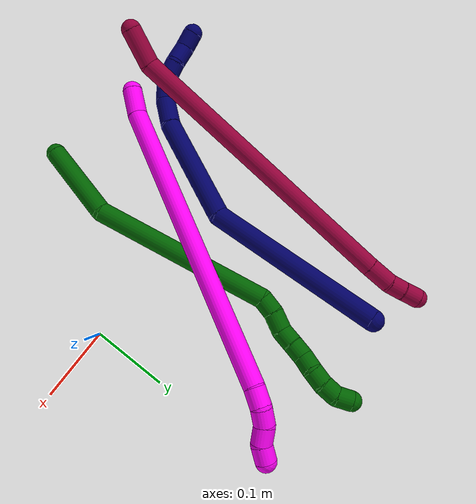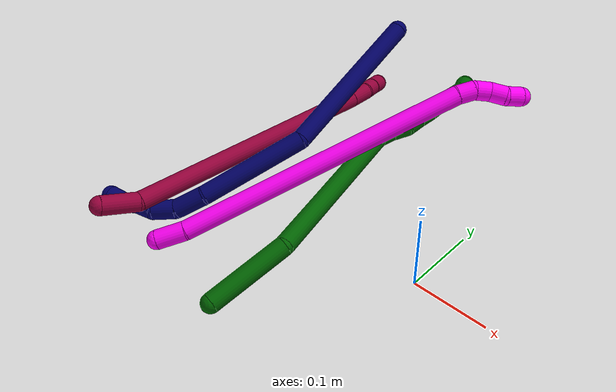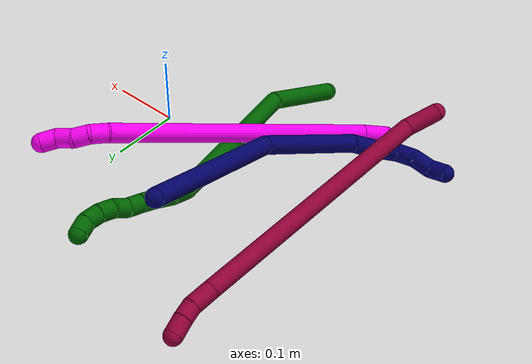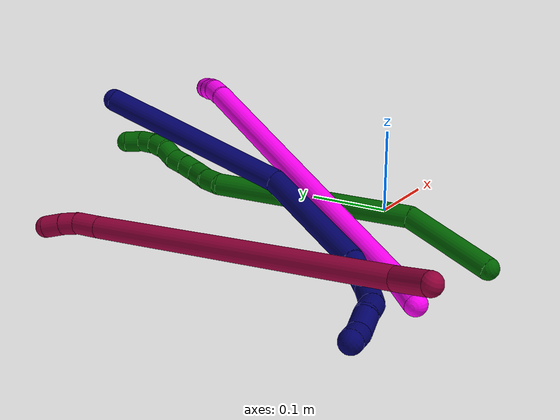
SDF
<sdf version="1.7">
 <world name="default">
  <model name="6">
   <static>0</static>
   <link name="6">
    <collision name="collision-cylinder-e_1_1_4">
     <pose>-0.028561 0.025702 0.037143 -0.605325 -0.563855 0.180394</pose>
     <geometry><cylinder><radius>0.0125</radius><length>0.106882</length></cylinder></geometry>
     <surface>
      <friction><ode><mu>1.16</mu><mu2>1.16</mu2><slip1>0</slip1><slip2>0</slip2></ode></friction>
      <contact><ode><kp>1e+06</kp><kd>1</kd><max_vel>0</max_vel><min_depth>0.001</min_depth></ode></contact>
     </surface>
    </collision>
    <visual name="visual-cylinder-e_1_1_4">
     <pose>-0.028561 0.025702 0.037143 -0.605325 -0.563855 0.180394</pose>
     <geometry><cylinder><radius>0.0125</radius><length>0.106882</length></cylinder></geometry>
     <material><ambient>0 0.392157 0.003922 1</ambient></material>
    </visual>
    <collision name="collision-cylinder-e_2_4_5">
     <pose>-0.069355 0.110288 0.170554 -0.548951 -0.107971 0.03043</pose>
     <geometry><cylinder><radius>0.0125</radius><length>0.227022</length></cylinder></geometry>
     <surface>
      <friction><ode><mu>1.16</mu><mu2>1.16</mu2><slip1>0</slip1><slip2>0</slip2></ode></friction>
      <contact><ode><kp>1e+06</kp><kd>1</kd><max_vel>0</max_vel><min_depth>0.001</min_depth></ode></contact>
     </surface>
    </collision>
    <visual name="visual-cylinder-e_2_4_5">
     <pose>-0.069355 0.110288 0.170554 -0.548951 -0.107971 0.03043</pose>
     <geometry><cylinder><radius>0.0125</radius><length>0.227022</length></cylinder></geometry>
     <material><ambient>0 0.392157 0.003922 1</ambient></material>
    </visual>
    <collision name="collision-cylinder-e_3_5_6">
     <pose>-0.086524 0.172397 0.275823 -0.344014 -0.476688 0.084367</pose>
     <geometry><cylinder><radius>0.0125</radius><length>0.021518</length></cylinder></geometry>
     <surface>
      <friction><ode><mu>1.16</mu><mu2>1.16</mu2><slip1>0</slip1><slip2>0</slip2></ode></friction>
      <contact><ode><kp>1e+06</kp><kd>1</kd><max_vel>0</max_vel><min_depth>0.001</min_depth></ode></contact>
     </surface>
    </collision>
    <visual name="visual-cylinder-e_3_5_6">
     <pose>-0.086524 0.172397 0.275823 -0.344014 -0.476688 0.084367</pose>
     <geometry><cylinder><radius>0.0125</radius><length>0.021518</length></cylinder></geometry>
     <material><ambient>0 0.392157 0.003922 1</ambient></material>
    </visual>
    <collision name="collision-cylinder-e_4_6_7">
     <pose>-0.099129 0.177618 0.294038 -0.213375 -0.682785 0.076065</pose>
     <geometry><cylinder><radius>0.0125</radius><length>0.024307</length></cylinder></geometry>
     <surface>
      <friction><ode><mu>1.16</mu><mu2>1.16</mu2><slip1>0</slip1><slip2>0</slip2></ode></friction>
      <contact><ode><kp>1e+06</kp><kd>1</kd><max_vel>0</max_vel><min_depth>0.001</min_depth></ode></contact>
     </surface>
    </collision>
    <visual name="visual-cylinder-e_4_6_7">
     <pose>-0.099129 0.177618 0.294038 -0.213375 -0.682785 0.076065</pose>
     <geometry><cylinder><radius>0.0125</radius><length>0.024307</length></cylinder></geometry>
     <material><ambient>0 0.392157 0.003922 1</ambient></material>
    </visual>
    <collision name="collision-cylinder-e_5_7_8">
     <pose>-0.111885 0.18414 0.310599 -0.552104 -0.532763 0.154291</pose>
     <geometry><cylinder><radius>0.0125</radius><length>0.020034</length></cylinder></geometry>
     <surface>
      <friction><ode><mu>1.16</mu><mu2>1.16</mu2><slip1>0</slip1><slip2>0</slip2></ode></friction>
      <contact><ode><kp>1e+06</kp><kd>1</kd><max_vel>0</max_vel><min_depth>0.001</min_depth></ode></contact>
     </surface>
    </collision>
    <visual name="visual-cylinder-e_5_7_8">
     <pose>-0.111885 0.18414 0.310599 -0.552104 -0.532763 0.154291</pose>
     <geometry><cylinder><radius>0.0125</radius><length>0.020034</length></cylinder></geometry>
     <material><ambient>0 0.392157 0.003922 1</ambient></material>
    </visual>
    <collision name="collision-cylinder-e_6_8_9">
     <pose>-0.121876 0.192647 0.325769 -0.47078 -0.509459 0.124738</pose>
     <geometry><cylinder><radius>0.0125</radius><length>0.020108</length></cylinder></geometry>
     <surface>
      <friction><ode><mu>1.16</mu><mu2>1.16</mu2><slip1>0</slip1><slip2>0</slip2></ode></friction>
      <contact><ode><kp>1e+06</kp><kd>1</kd><max_vel>0</max_vel><min_depth>0.001</min_depth></ode></contact>
     </surface>
    </collision>
    <visual name="visual-cylinder-e_6_8_9">
     <pose>-0.121876 0.192647 0.325769 -0.47078 -0.509459 0.124738</pose>
     <geometry><cylinder><radius>0.0125</radius><length>0.020108</length></cylinder></geometry>
     <material><ambient>0 0.392157 0.003922 1</ambient></material>
    </visual>
    <collision name="collision-cylinder-e_7_9_10">
     <pose>-0.133307 0.201644 0.339276 -0.722976 -0.710856 0.278876</pose>
     <geometry><cylinder><radius>0.0125</radius><length>0.020009</length></cylinder></geometry>
     <surface>
      <friction><ode><mu>1.16</mu><mu2>1.16</mu2><slip1>0</slip1><slip2>0</slip2></ode></friction>
      <contact><ode><kp>1e+06</kp><kd>1</kd><max_vel>0</max_vel><min_depth>0.001</min_depth></ode></contact>
     </surface>
    </collision>
    <visual name="visual-cylinder-e_7_9_10">
     <pose>-0.133307 0.201644 0.339276 -0.722976 -0.710856 0.278876</pose>
     <geometry><cylinder><radius>0.0125</radius><length>0.020009</length></cylinder></geometry>
     <material><ambient>0 0.392157 0.003922 1</ambient></material>
    </visual>
    <collision name="collision-cylinder-e_8_10_11">
     <pose>-0.144839 0.21004 0.352967 -0.399456 -0.522459 0.108128</pose>
     <geometry><cylinder><radius>0.0125</radius><length>0.020056</length></cylinder></geometry>
     <surface>
      <friction><ode><mu>1.16</mu><mu2>1.16</mu2><slip1>0</slip1><slip2>0</slip2></ode></friction>
      <contact><ode><kp>1e+06</kp><kd>1</kd><max_vel>0</max_vel><min_depth>0.001</min_depth></ode></contact>
     </surface>
    </collision>
    <visual name="visual-cylinder-e_8_10_11">
     <pose>-0.144839 0.21004 0.352967 -0.399456 -0.522459 0.108128</pose>
     <geometry><cylinder><radius>0.0125</radius><length>0.020056</length></cylinder></geometry>
     <material><ambient>0 0.392157 0.003922 1</ambient></material>
    </visual>
    <collision name="collision-cylinder-e_9_11_12">
     <pose>-0.152709 0.216975 0.369894 -0.379253 -0.28996 0.056031</pose>
     <geometry><cylinder><radius>0.0125</radius><length>0.020042</length></cylinder></geometry>
     <surface>
      <friction><ode><mu>1.16</mu><mu2>1.16</mu2><slip1>0</slip1><slip2>0</slip2></ode></friction>
      <contact><ode><kp>1e+06</kp><kd>1</kd><max_vel>0</max_vel><min_depth>0.001</min_depth></ode></contact>
     </surface>
    </collision>
    <visual name="visual-cylinder-e_9_11_12">
     <pose>-0.152709 0.216975 0.369894 -0.379253 -0.28996 0.056031</pose>
     <geometry><cylinder><radius>0.0125</radius><length>0.020042</length></cylinder></geometry>
     <material><ambient>0 0.392157 0.003922 1</ambient></material>
    </visual>
    <collision name="collision-cylinder-e_10_12_2">
     <pose>-0.15439 0.225387 0.387487 -0.510514 0.118557 -0.030971</pose>
     <geometry><cylinder><radius>0.0125</radius><length>0.020021</length></cylinder></geometry>
     <surface>
      <friction><ode><mu>1.16</mu><mu2>1.16</mu2><slip1>0</slip1><slip2>0</slip2></ode></friction>
      <contact><ode><kp>1e+06</kp><kd>1</kd><max_vel>0</max_vel><min_depth>0.001</min_depth></ode></contact>
     </surface>
    </collision>
    <visual name="visual-cylinder-e_10_12_2">
     <pose>-0.15439 0.225387 0.387487 -0.510514 0.118557 -0.030971</pose>
     <geometry><cylinder><radius>0.0125</radius><length>0.020021</length></cylinder></geometry>
     <material><ambient>0 0.392157 0.003922 1</ambient></material>
    </visual>
    <collision name="collision-sphere-2">
     <pose>-0.153206 0.230245 0.39616 0 -0 0</pose>
     <geometry><sphere><radius>0.0125</radius></sphere></geometry>
     <surface>
      <friction><ode><mu>1.16</mu><mu2>1.16</mu2><slip1>0</slip1><slip2>0</slip2></ode></friction>
      <contact><ode><kp>1e+06</kp><kd>1</kd><max_vel>0</max_vel><min_depth>0.001</min_depth></ode></contact>
     </surface>
    </collision>
    <visual name="visual-sphere-2">
     <pose>-0.153206 0.230245 0.39616 0 -0 0</pose>
     <geometry><sphere><radius>0.0125</radius></sphere></geometry>
     <material><ambient>0 0.392157 0.003922 1</ambient></material>
    </visual>
    <collision name="collision-sphere-12">
     <pose>-0.155574 0.22053 0.378814 0 -0 0</pose>
     <geometry><sphere><radius>0.0125</radius></sphere></geometry>
     <surface>
      <friction><ode><mu>1.16</mu><mu2>1.16</mu2><slip1>0</slip1><slip2>0</slip2></ode></friction>
      <contact><ode><kp>1e+06</kp><kd>1</kd><max_vel>0</max_vel><min_depth>0.001</min_depth></ode></contact>
     </surface>
    </collision>
    <visual name="visual-sphere-12">
     <pose>-0.155574 0.22053 0.378814 0 -0 0</pose>
     <geometry><sphere><radius>0.0125</radius></sphere></geometry>
     <material><ambient>0 0.392157 0.003922 1</ambient></material>
    </visual>
    <collision name="collision-sphere-11">
     <pose>-0.149843 0.21342 0.360973 0 -0 0</pose>
     <geometry><sphere><radius>0.0125</radius></sphere></geometry>
     <surface>
      <friction><ode><mu>1.16</mu><mu2>1.16</mu2><slip1>0</slip1><slip2>0</slip2></ode></friction>
      <contact><ode><kp>1e+06</kp><kd>1</kd><max_vel>0</max_vel><min_depth>0.001</min_depth></ode></contact>
     </surface>
    </collision>
    <visual name="visual-sphere-11">
     <pose>-0.149843 0.21342 0.360973 0 -0 0</pose>
     <geometry><sphere><radius>0.0125</radius></sphere></geometry>
     <material><ambient>0 0.392157 0.003922 1</ambient></material>
    </visual>
    <collision name="collision-sphere-10">
     <pose>-0.139835 0.20666 0.344961 0 -0 0</pose>
     <geometry><sphere><radius>0.0125</radius></sphere></geometry>
     <surface>
      <friction><ode><mu>1.16</mu><mu2>1.16</mu2><slip1>0</slip1><slip2>0</slip2></ode></friction>
      <contact><ode><kp>1e+06</kp><kd>1</kd><max_vel>0</max_vel><min_depth>0.001</min_depth></ode></contact>
     </surface>
    </collision>
    <visual name="visual-sphere-10">
     <pose>-0.139835 0.20666 0.344961 0 -0 0</pose>
     <geometry><sphere><radius>0.0125</radius></sphere></geometry>
     <material><ambient>0 0.392157 0.003922 1</ambient></material>
    </visual>
    <collision name="collision-sphere-9">
     <pose>-0.126779 0.196628 0.333591 0 -0 0</pose>
     <geometry><sphere><radius>0.0125</radius></sphere></geometry>
     <surface>
      <friction><ode><mu>1.16</mu><mu2>1.16</mu2><slip1>0</slip1><slip2>0</slip2></ode></friction>
      <contact><ode><kp>1e+06</kp><kd>1</kd><max_vel>0</max_vel><min_depth>0.001</min_depth></ode></contact>
     </surface>
    </collision>
    <visual name="visual-sphere-9">
     <pose>-0.126779 0.196628 0.333591 0 -0 0</pose>
     <geometry><sphere><radius>0.0125</radius></sphere></geometry>
     <material><ambient>0 0.392157 0.003922 1</ambient></material>
    </visual>
    <collision name="collision-sphere-4">
     <pose>-0.057123 0.051404 0.074285 0 -0 0</pose>
     <geometry><sphere><radius>0.0125</radius></sphere></geometry>
     <surface>
      <friction><ode><mu>1.16</mu><mu2>1.16</mu2><slip1>0</slip1><slip2>0</slip2></ode></friction>
      <contact><ode><kp>1e+06</kp><kd>1</kd><max_vel>0</max_vel><min_depth>0.001</min_depth></ode></contact>
     </surface>
    </collision>
    <visual name="visual-sphere-4">
     <pose>-0.057123 0.051404 0.074285 0 -0 0</pose>
     <geometry><sphere><radius>0.0125</radius></sphere></geometry>
     <material><ambient>0 0.392157 0.003922 1</ambient></material>
    </visual>
    <collision name="collision-sphere-1">
     <geometry><sphere><radius>0.0125</radius></sphere></geometry>
     <surface>
      <friction><ode><mu>1.16</mu><mu2>1.16</mu2><slip1>0</slip1><slip2>0</slip2></ode></friction>
      <contact><ode><kp>1e+06</kp><kd>1</kd><max_vel>0</max_vel><min_depth>0.001</min_depth></ode></contact>
     </surface>
    </collision>
    <visual name="visual-sphere-1">
     <geometry><sphere><radius>0.0125</radius></sphere></geometry>
     <material><ambient>0 0.392157 0.003922 1</ambient></material>
    </visual>
    <collision name="collision-sphere-8">
     <pose>-0.116972 0.188665 0.317946 0 -0 0</pose>
     <geometry><sphere><radius>0.0125</radius></sphere></geometry>
     <surface>
      <friction><ode><mu>1.16</mu><mu2>1.16</mu2><slip1>0</slip1><slip2>0</slip2></ode></friction>
      <contact><ode><kp>1e+06</kp><kd>1</kd><max_vel>0</max_vel><min_depth>0.001</min_depth></ode></contact>
     </surface>
    </collision>
    <visual name="visual-sphere-8">
     <pose>-0.116972 0.188665 0.317946 0 -0 0</pose>
     <geometry><sphere><radius>0.0125</radius></sphere></geometry>
     <material><ambient>0 0.392157 0.003922 1</ambient></material>
    </visual>
    <collision name="collision-sphere-5">
     <pose>-0.081587 0.169173 0.266824 0 -0 0</pose>
     <geometry><sphere><radius>0.0125</radius></sphere></geometry>
     <surface>
      <friction><ode><mu>1.16</mu><mu2>1.16</mu2><slip1>0</slip1><slip2>0</slip2></ode></friction>
      <contact><ode><kp>1e+06</kp><kd>1</kd><max_vel>0</max_vel><min_depth>0.001</min_depth></ode></contact>
     </surface>
    </collision>
    <visual name="visual-sphere-5">
     <pose>-0.081587 0.169173 0.266824 0 -0 0</pose>
     <geometry><sphere><radius>0.0125</radius></sphere></geometry>
     <material><ambient>0 0.392157 0.003922 1</ambient></material>
    </visual>
    <collision name="collision-sphere-6">
     <pose>-0.09146 0.175621 0.284823 0 -0 0</pose>
     <geometry><sphere><radius>0.0125</radius></sphere></geometry>
     <surface>
      <friction><ode><mu>1.16</mu><mu2>1.16</mu2><slip1>0</slip1><slip2>0</slip2></ode></friction>
      <contact><ode><kp>1e+06</kp><kd>1</kd><max_vel>0</max_vel><min_depth>0.001</min_depth></ode></contact>
     </surface>
    </collision>
    <visual name="visual-sphere-6">
     <pose>-0.09146 0.175621 0.284823 0 -0 0</pose>
     <geometry><sphere><radius>0.0125</radius></sphere></geometry>
     <material><ambient>0 0.392157 0.003922 1</ambient></material>
    </visual>
    <collision name="collision-sphere-7">
     <pose>-0.106797 0.179614 0.303253 0 -0 0</pose>
     <geometry><sphere><radius>0.0125</radius></sphere></geometry>
     <surface>
      <friction><ode><mu>1.16</mu><mu2>1.16</mu2><slip1>0</slip1><slip2>0</slip2></ode></friction>
      <contact><ode><kp>1e+06</kp><kd>1</kd><max_vel>0</max_vel><min_depth>0.001</min_depth></ode></contact>
     </surface>
    </collision>
    <visual name="visual-sphere-7">
     <pose>-0.106797 0.179614 0.303253 0 -0 0</pose>
     <geometry><sphere><radius>0.0125</radius></sphere></geometry>
     <material><ambient>0 0.392157 0.003922 1</ambient></material>
    </visual>
    <inertial>
     <pose>-0.078971 0.120967 0.195169 0 -0 0</pose>
     <mass>0.5</mass>
     <inertia>
      <ixx>0.001112</ixx>
      <ixy>0</ixy>
      <ixz>0</ixz>
      <iyy>0.001009</iyy>
      <iyz>0</iyz>
      <izz>-0.000367</izz>
     </inertia>
    </inertial>
   </link>
   <pose>-0.145371 -0.190222 0.012569 2.12412 0.515103 -2.86032</pose>
  </model>
  <model name="7">
   <static>0</static>
   <link name="7">
    <collision name="collision-cylinder-e_1_1_4">
     <pose>-0.013758 -0.090133 -0.05863 2.14751 -0.127259 -0.233839</pose>
     <geometry><cylinder><radius>0.0125</radius><length>0.216801</length></cylinder></geometry>
     <surface>
      <friction><ode><mu>1.16</mu><mu2>1.16</mu2><slip1>0</slip1><slip2>0</slip2></ode></friction>
      <contact><ode><kp>1e+06</kp><kd>1</kd><max_vel>0</max_vel><min_depth>0.001</min_depth></ode></contact>
     </surface>
    </collision>
    <visual name="visual-cylinder-e_1_1_4">
     <pose>-0.013758 -0.090133 -0.05863 2.14751 -0.127259 -0.233839</pose>
     <geometry><cylinder><radius>0.0125</radius><length>0.216801</length></cylinder></geometry>
     <material><ambient>0.003922 0 0.403922 1</ambient></material>
    </visual>
    <collision name="collision-cylinder-e_2_4_5">
     <pose>-0.062572 -0.237718 -0.138106 1.91889 -0.520775 -0.726496</pose>
     <geometry><cylinder><radius>0.0125</radius><length>0.140914</length></cylinder></geometry>
     <surface>
      <friction><ode><mu>1.16</mu><mu2>1.16</mu2><slip1>0</slip1><slip2>0</slip2></ode></friction>
      <contact><ode><kp>1e+06</kp><kd>1</kd><max_vel>0</max_vel><min_depth>0.001</min_depth></ode></contact>
     </surface>
    </collision>
    <visual name="visual-cylinder-e_2_4_5">
     <pose>-0.062572 -0.237718 -0.138106 1.91889 -0.520775 -0.726496</pose>
     <geometry><cylinder><radius>0.0125</radius><length>0.140914</length></cylinder></geometry>
     <material><ambient>0.003922 0 0.403922 1</ambient></material>
    </visual>
    <collision name="collision-cylinder-e_3_5_6">
     <pose>-0.111509 -0.308662 -0.163509 1.89642 -0.772572 -1.031</pose>
     <geometry><cylinder><radius>0.0125</radius><length>0.039774</length></cylinder></geometry>
     <surface>
      <friction><ode><mu>1.16</mu><mu2>1.16</mu2><slip1>0</slip1><slip2>0</slip2></ode></friction>
      <contact><ode><kp>1e+06</kp><kd>1</kd><max_vel>0</max_vel><min_depth>0.001</min_depth></ode></contact>
     </surface>
    </collision>
    <visual name="visual-cylinder-e_3_5_6">
     <pose>-0.111509 -0.308662 -0.163509 1.89642 -0.772572 -1.031</pose>
     <geometry><cylinder><radius>0.0125</radius><length>0.039774</length></cylinder></geometry>
     <material><ambient>0.003922 0 0.403922 1</ambient></material>
    </visual>
    <collision name="collision-cylinder-e_4_6_7">
     <pose>-0.136225 -0.332319 -0.165583 1.33125 -0.80293 -0.643467</pose>
     <geometry><cylinder><radius>0.0125</radius><length>0.030124</length></cylinder></geometry>
     <surface>
      <friction><ode><mu>1.16</mu><mu2>1.16</mu2><slip1>0</slip1><slip2>0</slip2></ode></friction>
      <contact><ode><kp>1e+06</kp><kd>1</kd><max_vel>0</max_vel><min_depth>0.001</min_depth></ode></contact>
     </surface>
    </collision>
    <visual name="visual-cylinder-e_4_6_7">
     <pose>-0.136225 -0.332319 -0.165583 1.33125 -0.80293 -0.643467</pose>
     <geometry><cylinder><radius>0.0125</radius><length>0.030124</length></cylinder></geometry>
     <material><ambient>0.003922 0 0.403922 1</ambient></material>
    </visual>
    <collision name="collision-cylinder-e_5_7_8">
     <pose>-0.156525 -0.347127 -0.157191 0.666126 -0.899643 -0.331018</pose>
     <geometry><cylinder><radius>0.0125</radius><length>0.024173</length></cylinder></geometry>
     <surface>
      <friction><ode><mu>1.16</mu><mu2>1.16</mu2><slip1>0</slip1><slip2>0</slip2></ode></friction>
      <contact><ode><kp>1e+06</kp><kd>1</kd><max_vel>0</max_vel><min_depth>0.001</min_depth></ode></contact>
     </surface>
    </collision>
    <visual name="visual-cylinder-e_5_7_8">
     <pose>-0.156525 -0.347127 -0.157191 0.666126 -0.899643 -0.331018</pose>
     <geometry><cylinder><radius>0.0125</radius><length>0.024173</length></cylinder></geometry>
     <material><ambient>0.003922 0 0.403922 1</ambient></material>
    </visual>
    <collision name="collision-cylinder-e_6_8_9">
     <pose>-0.178174 -0.355135 -0.148542 0.887265 -1.22876 -0.64695</pose>
     <geometry><cylinder><radius>0.0125</radius><length>0.025867</length></cylinder></geometry>
     <surface>
      <friction><ode><mu>1.16</mu><mu2>1.16</mu2><slip1>0</slip1><slip2>0</slip2></ode></friction>
      <contact><ode><kp>1e+06</kp><kd>1</kd><max_vel>0</max_vel><min_depth>0.001</min_depth></ode></contact>
     </surface>
    </collision>
    <visual name="visual-cylinder-e_6_8_9">
     <pose>-0.178174 -0.355135 -0.148542 0.887265 -1.22876 -0.64695</pose>
     <geometry><cylinder><radius>0.0125</radius><length>0.025867</length></cylinder></geometry>
     <material><ambient>0.003922 0 0.403922 1</ambient></material>
    </visual>
    <collision name="collision-cylinder-e_7_9_2">
     <pose>-0.198729 -0.362434 -0.139534 0.560627 -0.846775 -0.258033</pose>
     <geometry><cylinder><radius>0.0125</radius><length>0.022347</length></cylinder></geometry>
     <surface>
      <friction><ode><mu>1.16</mu><mu2>1.16</mu2><slip1>0</slip1><slip2>0</slip2></ode></friction>
      <contact><ode><kp>1e+06</kp><kd>1</kd><max_vel>0</max_vel><min_depth>0.001</min_depth></ode></contact>
     </surface>
    </collision>
    <visual name="visual-cylinder-e_7_9_2">
     <pose>-0.198729 -0.362434 -0.139534 0.560627 -0.846775 -0.258033</pose>
     <geometry><cylinder><radius>0.0125</radius><length>0.022347</length></cylinder></geometry>
     <material><ambient>0.003922 0 0.403922 1</ambient></material>
    </visual>
    <collision name="collision-sphere-2">
     <pose>-0.2071 -0.366369 -0.133266 0 -0 0</pose>
     <geometry><sphere><radius>0.0125</radius></sphere></geometry>
     <surface>
      <friction><ode><mu>1.16</mu><mu2>1.16</mu2><slip1>0</slip1><slip2>0</slip2></ode></friction>
      <contact><ode><kp>1e+06</kp><kd>1</kd><max_vel>0</max_vel><min_depth>0.001</min_depth></ode></contact>
     </surface>
    </collision>
    <visual name="visual-sphere-2">
     <pose>-0.2071 -0.366369 -0.133266 0 -0 0</pose>
     <geometry><sphere><radius>0.0125</radius></sphere></geometry>
     <material><ambient>0.003922 0 0.403922 1</ambient></material>
    </visual>
    <collision name="collision-sphere-9">
     <pose>-0.190359 -0.358498 -0.145802 0 -0 0</pose>
     <geometry><sphere><radius>0.0125</radius></sphere></geometry>
     <surface>
      <friction><ode><mu>1.16</mu><mu2>1.16</mu2><slip1>0</slip1><slip2>0</slip2></ode></friction>
      <contact><ode><kp>1e+06</kp><kd>1</kd><max_vel>0</max_vel><min_depth>0.001</min_depth></ode></contact>
     </surface>
    </collision>
    <visual name="visual-sphere-9">
     <pose>-0.190359 -0.358498 -0.145802 0 -0 0</pose>
     <geometry><sphere><radius>0.0125</radius></sphere></geometry>
     <material><ambient>0.003922 0 0.403922 1</ambient></material>
    </visual>
    <collision name="collision-sphere-4">
     <pose>-0.027516 -0.180266 -0.117259 0 -0 0</pose>
     <geometry><sphere><radius>0.0125</radius></sphere></geometry>
     <surface>
      <friction><ode><mu>1.16</mu><mu2>1.16</mu2><slip1>0</slip1><slip2>0</slip2></ode></friction>
      <contact><ode><kp>1e+06</kp><kd>1</kd><max_vel>0</max_vel><min_depth>0.001</min_depth></ode></contact>
     </surface>
    </collision>
    <visual name="visual-sphere-4">
     <pose>-0.027516 -0.180266 -0.117259 0 -0 0</pose>
     <geometry><sphere><radius>0.0125</radius></sphere></geometry>
     <material><ambient>0.003922 0 0.403922 1</ambient></material>
    </visual>
    <collision name="collision-sphere-1">
     <geometry><sphere><radius>0.0125</radius></sphere></geometry>
     <surface>
      <friction><ode><mu>1.16</mu><mu2>1.16</mu2><slip1>0</slip1><slip2>0</slip2></ode></friction>
      <contact><ode><kp>1e+06</kp><kd>1</kd><max_vel>0</max_vel><min_depth>0.001</min_depth></ode></contact>
     </surface>
    </collision>
    <visual name="visual-sphere-1">
     <geometry><sphere><radius>0.0125</radius></sphere></geometry>
     <material><ambient>0.003922 0 0.403922 1</ambient></material>
    </visual>
    <collision name="collision-sphere-8">
     <pose>-0.16599 -0.351771 -0.151281 0 -0 0</pose>
     <geometry><sphere><radius>0.0125</radius></sphere></geometry>
     <surface>
      <friction><ode><mu>1.16</mu><mu2>1.16</mu2><slip1>0</slip1><slip2>0</slip2></ode></friction>
      <contact><ode><kp>1e+06</kp><kd>1</kd><max_vel>0</max_vel><min_depth>0.001</min_depth></ode></contact>
     </surface>
    </collision>
    <visual name="visual-sphere-8">
     <pose>-0.16599 -0.351771 -0.151281 0 -0 0</pose>
     <geometry><sphere><radius>0.0125</radius></sphere></geometry>
     <material><ambient>0.003922 0 0.403922 1</ambient></material>
    </visual>
    <collision name="collision-sphere-5">
     <pose>-0.097628 -0.295169 -0.158953 0 -0 0</pose>
     <geometry><sphere><radius>0.0125</radius></sphere></geometry>
     <surface>
      <friction><ode><mu>1.16</mu><mu2>1.16</mu2><slip1>0</slip1><slip2>0</slip2></ode></friction>
      <contact><ode><kp>1e+06</kp><kd>1</kd><max_vel>0</max_vel><min_depth>0.001</min_depth></ode></contact>
     </surface>
    </collision>
    <visual name="visual-sphere-5">
     <pose>-0.097628 -0.295169 -0.158953 0 -0 0</pose>
     <geometry><sphere><radius>0.0125</radius></sphere></geometry>
     <material><ambient>0.003922 0 0.403922 1</ambient></material>
    </visual>
    <collision name="collision-sphere-6">
     <pose>-0.125389 -0.322155 -0.168065 0 -0 0</pose>
     <geometry><sphere><radius>0.0125</radius></sphere></geometry>
     <surface>
      <friction><ode><mu>1.16</mu><mu2>1.16</mu2><slip1>0</slip1><slip2>0</slip2></ode></friction>
      <contact><ode><kp>1e+06</kp><kd>1</kd><max_vel>0</max_vel><min_depth>0.001</min_depth></ode></contact>
     </surface>
    </collision>
    <visual name="visual-sphere-6">
     <pose>-0.125389 -0.322155 -0.168065 0 -0 0</pose>
     <geometry><sphere><radius>0.0125</radius></sphere></geometry>
     <material><ambient>0.003922 0 0.403922 1</ambient></material>
    </visual>
    <collision name="collision-sphere-7">
     <pose>-0.14706 -0.342482 -0.163101 0 -0 0</pose>
     <geometry><sphere><radius>0.0125</radius></sphere></geometry>
     <surface>
      <friction><ode><mu>1.16</mu><mu2>1.16</mu2><slip1>0</slip1><slip2>0</slip2></ode></friction>
      <contact><ode><kp>1e+06</kp><kd>1</kd><max_vel>0</max_vel><min_depth>0.001</min_depth></ode></contact>
     </surface>
    </collision>
    <visual name="visual-sphere-7">
     <pose>-0.14706 -0.342482 -0.163101 0 -0 0</pose>
     <geometry><sphere><radius>0.0125</radius></sphere></geometry>
     <material><ambient>0.003922 0 0.403922 1</ambient></material>
    </visual>
    <inertial>
     <pose>-0.066344 -0.202006 -0.108847 0 -0 0</pose>
     <mass>0.5</mass>
     <inertia>
      <ixx>0.000632</ixx>
      <ixy>0</ixy>
      <ixz>0</ixz>
      <iyy>-0.00078</iyy>
      <iyz>0</iyz>
      <izz>0.001147</izz>
     </inertia>
    </inertial>
   </link>
   <pose>-0.223156 0.236072 0.153878 -0.291602 -0.633221 -0.004247</pose>
  </model>
  <model name="8">
   <static>0</static>
   <link name="8">
    <collision name="collision-cylinder-e_1_1_4">
     <pose>0.008692 0.018902 -0.012562 -2.15736 0.36576 -0.664391</pose>
     <geometry><cylinder><radius>0.0125</radius><length>0.048605</length></cylinder></geometry>
     <surface>
      <friction><ode><mu>1.16</mu><mu2>1.16</mu2><slip1>0</slip1><slip2>0</slip2></ode></friction>
      <contact><ode><kp>1e+06</kp><kd>1</kd><max_vel>0</max_vel><min_depth>0.001</min_depth></ode></contact>
     </surface>
    </collision>
    <visual name="visual-cylinder-e_1_1_4">
     <pose>0.008692 0.018902 -0.012562 -2.15736 0.36576 -0.664391</pose>
     <geometry><cylinder><radius>0.0125</radius><length>0.048605</length></cylinder></geometry>
     <material><ambient>0.584314 0 0.227451 1</ambient></material>
    </visual>
    <collision name="collision-cylinder-e_2_4_5">
     <pose>0.020328 0.207192 -0.106825 -2.02021 0.01565 -0.024923</pose>
     <geometry><cylinder><radius>0.0125</radius><length>0.376172</length></cylinder></geometry>
     <surface>
      <friction><ode><mu>1.16</mu><mu2>1.16</mu2><slip1>0</slip1><slip2>0</slip2></ode></friction>
      <contact><ode><kp>1e+06</kp><kd>1</kd><max_vel>0</max_vel><min_depth>0.001</min_depth></ode></contact>
     </surface>
    </collision>
    <visual name="visual-cylinder-e_2_4_5">
     <pose>0.020328 0.207192 -0.106825 -2.02021 0.01565 -0.024923</pose>
     <geometry><cylinder><radius>0.0125</radius><length>0.376172</length></cylinder></geometry>
     <material><ambient>0.584314 0 0.227451 1</ambient></material>
    </visual>
    <collision name="collision-cylinder-e_3_5_6">
     <pose>0.022994 0.391216 -0.195093 -1.99259 -0.01725 0.026647</pose>
     <geometry><cylinder><radius>0.0125</radius><length>0.032086</length></cylinder></geometry>
     <surface>
      <friction><ode><mu>1.16</mu><mu2>1.16</mu2><slip1>0</slip1><slip2>0</slip2></ode></friction>
      <contact><ode><kp>1e+06</kp><kd>1</kd><max_vel>0</max_vel><min_depth>0.001</min_depth></ode></contact>
     </surface>
    </collision>
    <visual name="visual-cylinder-e_3_5_6">
     <pose>0.022994 0.391216 -0.195093 -1.99259 -0.01725 0.026647</pose>
     <geometry><cylinder><radius>0.0125</radius><length>0.032086</length></cylinder></geometry>
     <material><ambient>0.584314 0 0.227451 1</ambient></material>
    </visual>
    <collision name="collision-cylinder-e_4_6_7">
     <pose>0.020528 0.414121 -0.206984 -2.14272 -0.219007 0.397712</pose>
     <geometry><cylinder><radius>0.0125</radius><length>0.020153</length></cylinder></geometry>
     <surface>
      <friction><ode><mu>1.16</mu><mu2>1.16</mu2><slip1>0</slip1><slip2>0</slip2></ode></friction>
      <contact><ode><kp>1e+06</kp><kd>1</kd><max_vel>0</max_vel><min_depth>0.001</min_depth></ode></contact>
     </surface>
    </collision>
    <visual name="visual-cylinder-e_4_6_7">
     <pose>0.020528 0.414121 -0.206984 -2.14272 -0.219007 0.397712</pose>
     <geometry><cylinder><radius>0.0125</radius><length>0.020153</length></cylinder></geometry>
     <material><ambient>0.584314 0 0.227451 1</ambient></material>
    </visual>
    <collision name="collision-cylinder-e_5_7_2">
     <pose>0.015596 0.431135 -0.219242 -2.24132 -0.241042 0.491137</pose>
     <geometry><cylinder><radius>0.0125</radius><length>0.022983</length></cylinder></geometry>
     <surface>
      <friction><ode><mu>1.16</mu><mu2>1.16</mu2><slip1>0</slip1><slip2>0</slip2></ode></friction>
      <contact><ode><kp>1e+06</kp><kd>1</kd><max_vel>0</max_vel><min_depth>0.001</min_depth></ode></contact>
     </surface>
    </collision>
    <visual name="visual-cylinder-e_5_7_2">
     <pose>0.015596 0.431135 -0.219242 -2.24132 -0.241042 0.491137</pose>
     <geometry><cylinder><radius>0.0125</radius><length>0.022983</length></cylinder></geometry>
     <material><ambient>0.584314 0 0.227451 1</ambient></material>
    </visual>
    <collision name="collision-sphere-2">
     <pose>0.012853 0.439878 -0.226177 0 -0 0</pose>
     <geometry><sphere><radius>0.0125</radius></sphere></geometry>
     <surface>
      <friction><ode><mu>1.16</mu><mu2>1.16</mu2><slip1>0</slip1><slip2>0</slip2></ode></friction>
      <contact><ode><kp>1e+06</kp><kd>1</kd><max_vel>0</max_vel><min_depth>0.001</min_depth></ode></contact>
     </surface>
    </collision>
    <visual name="visual-sphere-2">
     <pose>0.012853 0.439878 -0.226177 0 -0 0</pose>
     <geometry><sphere><radius>0.0125</radius></sphere></geometry>
     <material><ambient>0.584314 0 0.227451 1</ambient></material>
    </visual>
    <collision name="collision-sphere-7">
     <pose>0.018339 0.422392 -0.212308 0 -0 0</pose>
     <geometry><sphere><radius>0.0125</radius></sphere></geometry>
     <surface>
      <friction><ode><mu>1.16</mu><mu2>1.16</mu2><slip1>0</slip1><slip2>0</slip2></ode></friction>
      <contact><ode><kp>1e+06</kp><kd>1</kd><max_vel>0</max_vel><min_depth>0.001</min_depth></ode></contact>
     </surface>
    </collision>
    <visual name="visual-sphere-7">
     <pose>0.018339 0.422392 -0.212308 0 -0 0</pose>
     <geometry><sphere><radius>0.0125</radius></sphere></geometry>
     <material><ambient>0.584314 0 0.227451 1</ambient></material>
    </visual>
    <collision name="collision-sphere-6">
     <pose>0.022717 0.405851 -0.201661 0 -0 0</pose>
     <geometry><sphere><radius>0.0125</radius></sphere></geometry>
     <surface>
      <friction><ode><mu>1.16</mu><mu2>1.16</mu2><slip1>0</slip1><slip2>0</slip2></ode></friction>
      <contact><ode><kp>1e+06</kp><kd>1</kd><max_vel>0</max_vel><min_depth>0.001</min_depth></ode></contact>
     </surface>
    </collision>
    <visual name="visual-sphere-6">
     <pose>0.022717 0.405851 -0.201661 0 -0 0</pose>
     <geometry><sphere><radius>0.0125</radius></sphere></geometry>
     <material><ambient>0.584314 0 0.227451 1</ambient></material>
    </visual>
    <collision name="collision-sphere-5">
     <pose>0.023271 0.376581 -0.188526 0 -0 0</pose>
     <geometry><sphere><radius>0.0125</radius></sphere></geometry>
     <surface>
      <friction><ode><mu>1.16</mu><mu2>1.16</mu2><slip1>0</slip1><slip2>0</slip2></ode></friction>
      <contact><ode><kp>1e+06</kp><kd>1</kd><max_vel>0</max_vel><min_depth>0.001</min_depth></ode></contact>
     </surface>
    </collision>
    <visual name="visual-sphere-5">
     <pose>0.023271 0.376581 -0.188526 0 -0 0</pose>
     <geometry><sphere><radius>0.0125</radius></sphere></geometry>
     <material><ambient>0.584314 0 0.227451 1</ambient></material>
    </visual>
    <collision name="collision-sphere-1">
     <geometry><sphere><radius>0.0125</radius></sphere></geometry>
     <surface>
      <friction><ode><mu>1.16</mu><mu2>1.16</mu2><slip1>0</slip1><slip2>0</slip2></ode></friction>
      <contact><ode><kp>1e+06</kp><kd>1</kd><max_vel>0</max_vel><min_depth>0.001</min_depth></ode></contact>
     </surface>
    </collision>
    <visual name="visual-sphere-1">
     <geometry><sphere><radius>0.0125</radius></sphere></geometry>
     <material><ambient>0.584314 0 0.227451 1</ambient></material>
    </visual>
    <collision name="collision-sphere-4">
     <pose>0.017384 0.037803 -0.025124 0 -0 0</pose>
     <geometry><sphere><radius>0.0125</radius></sphere></geometry>
     <surface>
      <friction><ode><mu>1.16</mu><mu2>1.16</mu2><slip1>0</slip1><slip2>0</slip2></ode></friction>
      <contact><ode><kp>1e+06</kp><kd>1</kd><max_vel>0</max_vel><min_depth>0.001</min_depth></ode></contact>
     </surface>
    </collision>
    <visual name="visual-sphere-4">
     <pose>0.017384 0.037803 -0.025124 0 -0 0</pose>
     <geometry><sphere><radius>0.0125</radius></sphere></geometry>
     <material><ambient>0.584314 0 0.227451 1</ambient></material>
    </visual>
    <inertial>
     <pose>0.019158 0.219332 -0.11253 0 -0 0</pose>
     <mass>0.5</mass>
     <inertia>
      <ixx>0.004349</ixx>
      <ixy>0</ixy>
      <ixz>0</ixz>
      <iyy>-0.002019</iyy>
      <iyz>0</iyz>
      <izz>-0.004114</izz>
     </inertia>
    </inertial>
   </link>
   <pose>-0.324062 -0.203098 0.060952 0.377124 0.083203 -0.048632</pose>
  </model>
  <model name="10">
   <static>0</static>
   <link name="10">
    <collision name="collision-cylinder-e_1_1_4">
     <pose>0.003317 0.013456 0.012066 -0.839797 0.181502 -0.08121</pose>
     <geometry><cylinder><radius>0.0125</radius><length>0.036751</length></cylinder></geometry>
     <surface>
      <friction><ode><mu>1.16</mu><mu2>1.16</mu2><slip1>0</slip1><slip2>0</slip2></ode></friction>
      <contact><ode><kp>1e+06</kp><kd>1</kd><max_vel>0</max_vel><min_depth>0.001</min_depth></ode></contact>
     </surface>
    </collision>
    <visual name="visual-cylinder-e_1_1_4">
     <pose>0.003317 0.013456 0.012066 -0.839797 0.181502 -0.08121</pose>
     <geometry><cylinder><radius>0.0125</radius><length>0.036751</length></cylinder></geometry>
     <material><ambient>1 0 0.964706 1</ambient></material>
    </visual>
    <collision name="collision-cylinder-e_2_4_5">
     <pose>0.044082 0.184955 0.120752 -1.02208 0.199475 -0.112105</pose>
     <geometry><cylinder><radius>0.0125</radius><length>0.37797</length></cylinder></geometry>
     <surface>
      <friction><ode><mu>1.16</mu><mu2>1.16</mu2><slip1>0</slip1><slip2>0</slip2></ode></friction>
      <contact><ode><kp>1e+06</kp><kd>1</kd><max_vel>0</max_vel><min_depth>0.001</min_depth></ode></contact>
     </surface>
    </collision>
    <visual name="visual-cylinder-e_2_4_5">
     <pose>0.044082 0.184955 0.120752 -1.02208 0.199475 -0.112105</pose>
     <geometry><cylinder><radius>0.0125</radius><length>0.37797</length></cylinder></geometry>
     <material><ambient>1 0 0.964706 1</ambient></material>
    </visual>
    <collision name="collision-cylinder-e_3_5_6">
     <pose>0.085096 0.351295 0.224252 -0.878386 0.319506 -0.151104</pose>
     <geometry><cylinder><radius>0.0125</radius><length>0.022704</length></cylinder></geometry>
     <surface>
      <friction><ode><mu>1.16</mu><mu2>1.16</mu2><slip1>0</slip1><slip2>0</slip2></ode></friction>
      <contact><ode><kp>1e+06</kp><kd>1</kd><max_vel>0</max_vel><min_depth>0.001</min_depth></ode></contact>
     </surface>
    </collision>
    <visual name="visual-cylinder-e_3_5_6">
     <pose>0.085096 0.351295 0.224252 -0.878386 0.319506 -0.151104</pose>
     <geometry><cylinder><radius>0.0125</radius><length>0.022704</length></cylinder></geometry>
     <material><ambient>1 0 0.964706 1</ambient></material>
    </visual>
    <collision name="collision-cylinder-e_4_6_7">
     <pose>0.094156 0.364298 0.23842 -0.573533 0.564562 -0.170639</pose>
     <geometry><cylinder><radius>0.0125</radius><length>0.020539</length></cylinder></geometry>
     <surface>
      <friction><ode><mu>1.16</mu><mu2>1.16</mu2><slip1>0</slip1><slip2>0</slip2></ode></friction>
      <contact><ode><kp>1e+06</kp><kd>1</kd><max_vel>0</max_vel><min_depth>0.001</min_depth></ode></contact>
     </surface>
    </collision>
    <visual name="visual-cylinder-e_4_6_7">
     <pose>0.094156 0.364298 0.23842 -0.573533 0.564562 -0.170639</pose>
     <geometry><cylinder><radius>0.0125</radius><length>0.020539</length></cylinder></geometry>
     <material><ambient>1 0 0.964706 1</ambient></material>
    </visual>
    <collision name="collision-cylinder-e_5_7_8">
     <pose>0.10335 0.37167 0.255509 -0.265422 0.349254 -0.047095</pose>
     <geometry><cylinder><radius>0.0125</radius><length>0.02162</length></cylinder></geometry>
     <surface>
      <friction><ode><mu>1.16</mu><mu2>1.16</mu2><slip1>0</slip1><slip2>0</slip2></ode></friction>
      <contact><ode><kp>1e+06</kp><kd>1</kd><max_vel>0</max_vel><min_depth>0.001</min_depth></ode></contact>
     </surface>
    </collision>
    <visual name="visual-cylinder-e_5_7_8">
     <pose>0.10335 0.37167 0.255509 -0.265422 0.349254 -0.047095</pose>
     <geometry><cylinder><radius>0.0125</radius><length>0.02162</length></cylinder></geometry>
     <material><ambient>1 0 0.964706 1</ambient></material>
    </visual>
    <collision name="collision-cylinder-e_6_8_2">
     <pose>0.112705 0.379499 0.272058 -0.653331 0.58722 -0.204161</pose>
     <geometry><cylinder><radius>0.0125</radius><length>0.020416</length></cylinder></geometry>
     <surface>
      <friction><ode><mu>1.16</mu><mu2>1.16</mu2><slip1>0</slip1><slip2>0</slip2></ode></friction>
      <contact><ode><kp>1e+06</kp><kd>1</kd><max_vel>0</max_vel><min_depth>0.001</min_depth></ode></contact>
     </surface>
    </collision>
    <visual name="visual-cylinder-e_6_8_2">
     <pose>0.112705 0.379499 0.272058 -0.653331 0.58722 -0.204161</pose>
     <geometry><cylinder><radius>0.0125</radius><length>0.020416</length></cylinder></geometry>
     <material><ambient>1 0 0.964706 1</ambient></material>
    </visual>
    <collision name="collision-sphere-2">
     <pose>0.118361 0.384665 0.278806 0 -0 0</pose>
     <geometry><sphere><radius>0.0125</radius></sphere></geometry>
     <surface>
      <friction><ode><mu>1.16</mu><mu2>1.16</mu2><slip1>0</slip1><slip2>0</slip2></ode></friction>
      <contact><ode><kp>1e+06</kp><kd>1</kd><max_vel>0</max_vel><min_depth>0.001</min_depth></ode></contact>
     </surface>
    </collision>
    <visual name="visual-sphere-2">
     <pose>0.118361 0.384665 0.278806 0 -0 0</pose>
     <geometry><sphere><radius>0.0125</radius></sphere></geometry>
     <material><ambient>1 0 0.964706 1</ambient></material>
    </visual>
    <collision name="collision-sphere-4">
     <pose>0.006634 0.026912 0.024132 0 -0 0</pose>
     <geometry><sphere><radius>0.0125</radius></sphere></geometry>
     <surface>
      <friction><ode><mu>1.16</mu><mu2>1.16</mu2><slip1>0</slip1><slip2>0</slip2></ode></friction>
      <contact><ode><kp>1e+06</kp><kd>1</kd><max_vel>0</max_vel><min_depth>0.001</min_depth></ode></contact>
     </surface>
    </collision>
    <visual name="visual-sphere-4">
     <pose>0.006634 0.026912 0.024132 0 -0 0</pose>
     <geometry><sphere><radius>0.0125</radius></sphere></geometry>
     <material><ambient>1 0 0.964706 1</ambient></material>
    </visual>
    <collision name="collision-sphere-1">
     <geometry><sphere><radius>0.0125</radius></sphere></geometry>
     <surface>
      <friction><ode><mu>1.16</mu><mu2>1.16</mu2><slip1>0</slip1><slip2>0</slip2></ode></friction>
      <contact><ode><kp>1e+06</kp><kd>1</kd><max_vel>0</max_vel><min_depth>0.001</min_depth></ode></contact>
     </surface>
    </collision>
    <visual name="visual-sphere-1">
     <geometry><sphere><radius>0.0125</radius></sphere></geometry>
     <material><ambient>1 0 0.964706 1</ambient></material>
    </visual>
    <collision name="collision-sphere-8">
     <pose>0.107049 0.374334 0.26531 0 -0 0</pose>
     <geometry><sphere><radius>0.0125</radius></sphere></geometry>
     <surface>
      <friction><ode><mu>1.16</mu><mu2>1.16</mu2><slip1>0</slip1><slip2>0</slip2></ode></friction>
      <contact><ode><kp>1e+06</kp><kd>1</kd><max_vel>0</max_vel><min_depth>0.001</min_depth></ode></contact>
     </surface>
    </collision>
    <visual name="visual-sphere-8">
     <pose>0.107049 0.374334 0.26531 0 -0 0</pose>
     <geometry><sphere><radius>0.0125</radius></sphere></geometry>
     <material><ambient>1 0 0.964706 1</ambient></material>
    </visual>
    <collision name="collision-sphere-5">
     <pose>0.08153 0.342999 0.217371 0 -0 0</pose>
     <geometry><sphere><radius>0.0125</radius></sphere></geometry>
     <surface>
      <friction><ode><mu>1.16</mu><mu2>1.16</mu2><slip1>0</slip1><slip2>0</slip2></ode></friction>
      <contact><ode><kp>1e+06</kp><kd>1</kd><max_vel>0</max_vel><min_depth>0.001</min_depth></ode></contact>
     </surface>
    </collision>
    <visual name="visual-sphere-5">
     <pose>0.08153 0.342999 0.217371 0 -0 0</pose>
     <geometry><sphere><radius>0.0125</radius></sphere></geometry>
     <material><ambient>1 0 0.964706 1</ambient></material>
    </visual>
    <collision name="collision-sphere-6">
     <pose>0.088662 0.35959 0.231132 0 -0 0</pose>
     <geometry><sphere><radius>0.0125</radius></sphere></geometry>
     <surface>
      <friction><ode><mu>1.16</mu><mu2>1.16</mu2><slip1>0</slip1><slip2>0</slip2></ode></friction>
      <contact><ode><kp>1e+06</kp><kd>1</kd><max_vel>0</max_vel><min_depth>0.001</min_depth></ode></contact>
     </surface>
    </collision>
    <visual name="visual-sphere-6">
     <pose>0.088662 0.35959 0.231132 0 -0 0</pose>
     <geometry><sphere><radius>0.0125</radius></sphere></geometry>
     <material><ambient>1 0 0.964706 1</ambient></material>
    </visual>
    <collision name="collision-sphere-7">
     <pose>0.099651 0.369005 0.245707 0 -0 0</pose>
     <geometry><sphere><radius>0.0125</radius></sphere></geometry>
     <surface>
      <friction><ode><mu>1.16</mu><mu2>1.16</mu2><slip1>0</slip1><slip2>0</slip2></ode></friction>
      <contact><ode><kp>1e+06</kp><kd>1</kd><max_vel>0</max_vel><min_depth>0.001</min_depth></ode></contact>
     </surface>
    </collision>
    <visual name="visual-sphere-7">
     <pose>0.099651 0.369005 0.245707 0 -0 0</pose>
     <geometry><sphere><radius>0.0125</radius></sphere></geometry>
     <material><ambient>1 0 0.964706 1</ambient></material>
    </visual>
    <inertial>
     <pose>0.05037 0.203287 0.134301 0 -0 0</pose>
     <mass>0.5</mass>
     <inertia>
      <ixx>0.003922</ixx>
      <ixy>0</ixy>
      <ixz>0</ixz>
      <iyy>0.001968</iyy>
      <iyz>0</iyz>
      <izz>-0.004659</izz>
     </inertia>
    </inertial>
   </link>
   <pose>-0.270566 -0.165595 0.012876 1.61101 0.959764 1.70517</pose>
  </model>
 </world>
</sdf>
